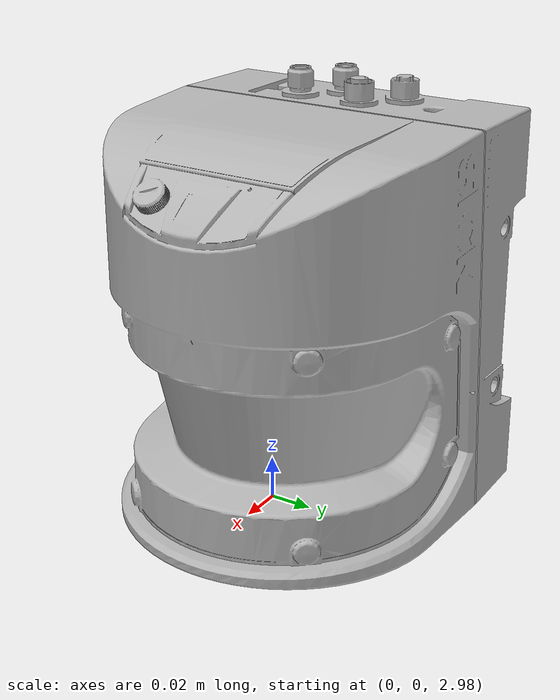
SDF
<?xml version="1.0"?>
<sdf version="1.4">
  <model name="SICK">
    <pose>0 0 3 0 0 0 </pose>
        <mass>0.5</mass>
          <inertial>
        <mass>0.5</mass>
        <inertia>
          <ixx>0.0005291667</ixx>
          <ixy>-0</ixy>
          <ixz>0</ixz>
          <iyy>0.0005291667</iyy>
          <iyz>0</iyz>
          <izz>0.000225</izz>
        </inertia>
      </inertial>
    <link name="link">
      <gravity>0</gravity>
      <visual name='visual'>
	<pose>0 0 0 1.57 0 -1.57 </pose>
	<geometry>
	  <mesh>
	    <uri>model://SICK/meshes/LMS.STL </uri>
	  </mesh>
	</geometry>
      </visual>
      <sensor name='laser' type='gpu_ray'>
	<pose>0.01 0.04 0.0051 0 0 0</pose>
	<ray>
	  <scan>
	    <horizontal>
	      <samples>760</samples>
	      <resolution>1</resolution>
	      <min_angle>-1.658</min_angle>
	      <max_angle>1.658</max_angle>
	    </horizontal>
	  </scan>
	  <range>
	    <min>0.1</min>
	    <max>65</max>
	    <resolution>1</resolution>
	  </range>

	</ray>
	  <plugin name='laser' filename='libsick_gpu.so'/>
	<always_on>1</always_on>
	<update_rate>30</update_rate>
	<visualize>0</visualize>
      </sensor>
    </link>

  </model>
</sdf>
